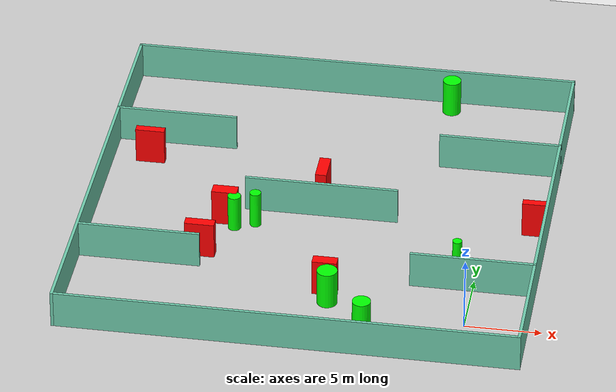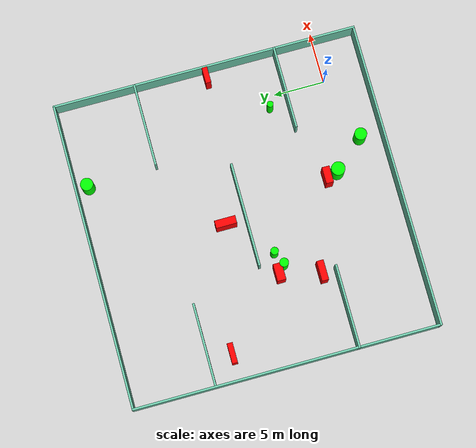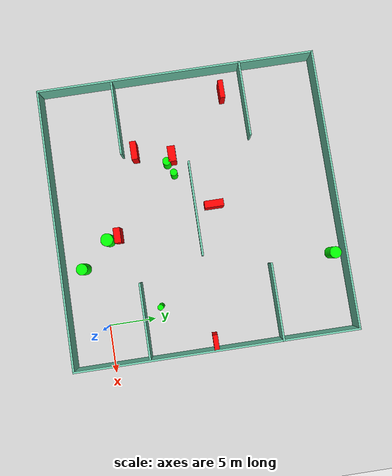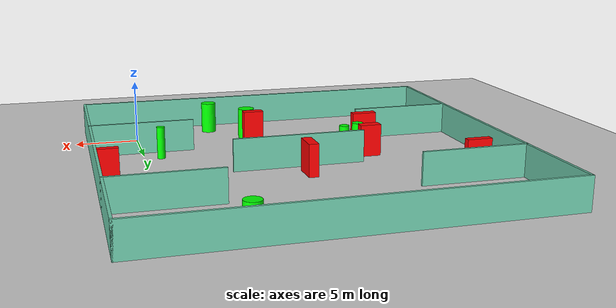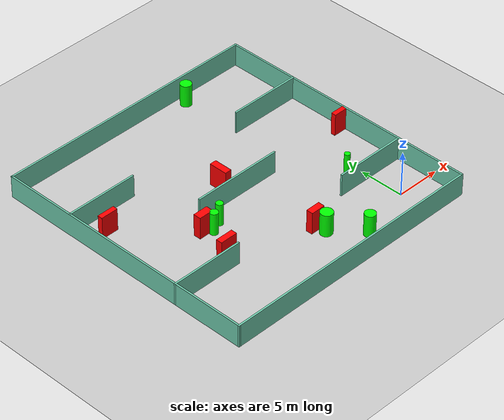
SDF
<sdf version="1.7">
 <world name="default">
  <light name="sun" type="directional">
   <pose>0 0 10 0 -0 0</pose>
   <diffuse>0.8 0.8 0.8 1</diffuse>
   <specular>0.2 0.2 0.2 1</specular>
   <attenuation>
    <range>1000</range>
    <constant>0.9</constant>
    <linear>0.01</linear>
    <quadratic>0.001</quadratic>
   </attenuation>
   <direction>-0.5 0.1 -0.9</direction>
   <spot><inner_angle>0</inner_angle><outer_angle>0</outer_angle><falloff>0</falloff></spot>
  </light>
  <model name="ground_plane">
   <static>1</static>
   <link name="link">
    <collision name="collision">
     <geometry><plane><normal>0 0 1</normal><size>100 100</size></plane></geometry>
     <surface>
      <contact><collide_bitmask>65535</collide_bitmask></contact>
      <friction><ode><mu>100</mu><mu2>50</mu2></ode></friction>
     </surface>
    </collision>
    <visual name="visual">
     <cast_shadows>0</cast_shadows>
     <geometry><plane><normal>0 0 1</normal><size>100 100</size></plane></geometry>
     <material>
      <script><uri>file://media/materials/scripts/gazebo.material</uri><name>Gazebo/Grey</name></script>
     </material>
    </visual>
   </link>
  </model>
  <gravity>0 0 -9.8</gravity>
  <magnetic_field>6e-06 2.3e-05 -4.2e-05</magnetic_field>
  <atmosphere type="adiabatic"/>
  <physics type="ode">
   <max_step_size>0.001</max_step_size>
   <real_time_factor>1</real_time_factor>
   <real_time_update_rate>1000</real_time_update_rate>
  </physics>
  <scene><ambient>0.4 0.4 0.4 1</ambient><background>0.7 0.7 0.7 1</background><shadows>1</shadows></scene>
  <spherical_coordinates>
   <surface_model>EARTH_WGS84</surface_model>
   <latitude_deg>0</latitude_deg>
   <longitude_deg>0</longitude_deg>
   <elevation>0</elevation>
   <heading_deg>0</heading_deg>
  </spherical_coordinates>
  <model name="my_base_walls">
   <link name="Wall_10">
    <collision name="Wall_10_Collision">
     <geometry><box><size>8.2 0.2 2.5</size></box></geometry>
     <pose>0 0 1.25 0 -0 0</pose>
    </collision>
    <visual name="Wall_10_Visual">
     <pose>0 0 1.25 0 -0 0</pose>
     <geometry><box><size>8.2 0.2 2.5</size></box></geometry>
     <material>
      <script><uri>file://media/materials/scripts/gazebo.material</uri><name>Gazebo/Grey</name></script>
      <ambient>0.435294 0.796078 0.67451 1</ambient>
     </material>
     <meta><layer>0</layer></meta>
    </visual>
    <pose>-11 -7 0 0 -0 0</pose>
   </link>
   <link name="Wall_12">
    <collision name="Wall_12_Collision">
     <geometry><box><size>8.2 0.2 2.5</size></box></geometry>
     <pose>0 0 1.25 0 -0 0</pose>
    </collision>
    <visual name="Wall_12_Visual">
     <pose>0 0 1.25 0 -0 0</pose>
     <geometry><box><size>8.2 0.2 2.5</size></box></geometry>
     <material>
      <script><uri>file://media/materials/scripts/gazebo.material</uri><name>Gazebo/Grey</name></script>
      <ambient>0.435294 0.796078 0.67451 1</ambient>
     </material>
     <meta><layer>0</layer></meta>
    </visual>
    <pose>-11 7 0 0 -0 0</pose>
   </link>
   <link name="Wall_14">
    <collision name="Wall_14_Collision">
     <geometry><box><size>8.2 0.2 2.5</size></box></geometry>
     <pose>0 0 1.25 0 -0 0</pose>
    </collision>
    <visual name="Wall_14_Visual">
     <pose>0 0 1.25 0 -0 0</pose>
     <geometry><box><size>8.2 0.2 2.5</size></box></geometry>
     <material>
      <script><uri>file://media/materials/scripts/gazebo.material</uri><name>Gazebo/Grey</name></script>
      <ambient>0.435294 0.796078 0.67451 1</ambient>
     </material>
     <meta><layer>0</layer></meta>
    </visual>
    <pose>11 7 0 0 -0 3.14159</pose>
   </link>
   <link name="Wall_16">
    <collision name="Wall_16_Collision">
     <geometry><box><size>10.2 0.2 2.5</size></box></geometry>
     <pose>0 0 1.25 0 -0 0</pose>
    </collision>
    <visual name="Wall_16_Visual">
     <pose>0 0 1.25 0 -0 0</pose>
     <geometry><box><size>10.2 0.2 2.5</size></box></geometry>
     <material>
      <script><uri>file://media/materials/scripts/gazebo.material</uri><name>Gazebo/Grey</name></script>
      <ambient>0.435294 0.796078 0.67451 1</ambient>
     </material>
     <meta><layer>0</layer></meta>
    </visual>
    <pose>0 0 0 0 -0 3.14159</pose>
   </link>
   <link name="Wall_2">
    <collision name="Wall_2_Collision">
     <geometry><box><size>30.2 0.2 2.5</size></box></geometry>
     <pose>0 0 1.25 0 -0 0</pose>
    </collision>
    <visual name="Wall_2_Visual">
     <pose>0 0 1.25 0 -0 0</pose>
     <geometry><box><size>30.2 0.2 2.5</size></box></geometry>
     <material>
      <script><uri>file://media/materials/scripts/gazebo.material</uri><name>Gazebo/Grey</name></script>
      <ambient>0.435294 0.796078 0.67451 1</ambient>
     </material>
     <meta><layer>0</layer></meta>
    </visual>
    <pose>0 -15 0 0 -0 3.14159</pose>
   </link>
   <link name="Wall_3">
    <collision name="Wall_3_Collision">
     <geometry><box><size>30.2 0.2 2.5</size></box></geometry>
     <pose>0 0 1.25 0 -0 0</pose>
    </collision>
    <visual name="Wall_3_Visual">
     <pose>0 0 1.25 0 -0 0</pose>
     <geometry><box><size>30.2 0.2 2.5</size></box></geometry>
     <material>
      <script><uri>file://media/materials/scripts/gazebo.material</uri><name>Gazebo/Grey</name></script>
      <ambient>0.435294 0.796078 0.67451 1</ambient>
     </material>
     <meta><layer>0</layer></meta>
    </visual>
    <pose>-15 0 0 0 -0 1.5708</pose>
   </link>
   <link name="Wall_4">
    <collision name="Wall_4_Collision">
     <geometry><box><size>30.2 0.2 2.5</size></box></geometry>
     <pose>0 0 1.25 0 -0 0</pose>
    </collision>
    <visual name="Wall_4_Visual">
     <pose>0 0 1.25 0 -0 0</pose>
     <geometry><box><size>30.2 0.2 2.5</size></box></geometry>
     <material>
      <script><uri>file://media/materials/scripts/gazebo.material</uri><name>Gazebo/Grey</name></script>
      <ambient>0.435294 0.796078 0.67451 1</ambient>
     </material>
     <meta><layer>0</layer></meta>
    </visual>
    <pose>0 15 0 0 -0 0</pose>
   </link>
   <link name="Wall_6">
    <collision name="Wall_6_Collision">
     <geometry><box><size>30.2 0.2 2.5</size></box></geometry>
     <pose>0 0 1.25 0 -0 0</pose>
    </collision>
    <visual name="Wall_6_Visual">
     <pose>0 0 1.25 0 -0 0</pose>
     <geometry><box><size>30.2 0.2 2.5</size></box></geometry>
     <material>
      <script><uri>file://media/materials/scripts/gazebo.material</uri><name>Gazebo/Grey</name></script>
      <ambient>0.435294 0.796078 0.67451 1</ambient>
     </material>
     <meta><layer>0</layer></meta>
    </visual>
    <pose>15 0 0 0 -0 1.5708</pose>
   </link>
   <link name="Wall_8">
    <collision name="Wall_8_Collision">
     <geometry><box><size>8.2 0.2 2.5</size></box></geometry>
     <pose>0 0 1.25 0 -0 0</pose>
    </collision>
    <visual name="Wall_8_Visual">
     <pose>0 0 1.25 0 -0 0</pose>
     <geometry><box><size>8.2 0.2 2.5</size></box></geometry>
     <material>
      <script><uri>file://media/materials/scripts/gazebo.material</uri><name>Gazebo/Grey</name></script>
      <ambient>0.435294 0.796078 0.67451 1</ambient>
     </material>
     <meta><layer>0</layer></meta>
    </visual>
    <pose>11 -7 0 0 -0 3.14159</pose>
   </link>
   <static>1</static>
   <pose>-11 11 0 0 -0 0</pose>
  </model>
  <model name="cylinder1">
   <static>1</static>
   <link name="link">
    <inertial>
     <mass>1</mass>
     <inertia><ixx>0.5</ixx><ixy>0</ixy><ixz>0</ixz><iyy>0.5</iyy><iyz>0</iyz><izz>1</izz></inertia>
    </inertial>
    <collision name="collision">
     <geometry><cylinder><radius>0.38145933421794703</radius><length>2.5</length></cylinder></geometry>
    </collision>
    <visual name="visual">
     <geometry><cylinder><radius>0.38145933421794703</radius><length>2.5</length></cylinder></geometry>
     <material>
      <ambient>0 1 0 1</ambient>
      <diffuse>0 1 0 1</diffuse>
      <specular>0.1 0.1 0.1 1</specular>
      <emissive>0 0 0 0</emissive>
     </material>
    </visual>
   </link>
   <pose>-15.122676262033591 9.259781263989922 1.25 0 0 0</pose>
  </model>
  <model name="cylinder2">
   <static>1</static>
   <link name="link">
    <inertial>
     <mass>1</mass>
     <inertia><ixx>0.5</ixx><ixy>0</ixy><ixz>0</ixz><iyy>0.5</iyy><iyz>0</iyz><izz>1</izz></inertia>
    </inertial>
    <collision name="collision">
     <geometry><cylinder><radius>0.617310928817248</radius><length>2.5</length></cylinder></geometry>
    </collision>
    <visual name="visual">
     <geometry><cylinder><radius>0.617310928817248</radius><length>2.5</length></cylinder></geometry>
     <material>
      <ambient>0 1 0 1</ambient>
      <diffuse>0 1 0 1</diffuse>
      <specular>0.1 0.1 0.1 1</specular>
      <emissive>0 0 0 0</emissive>
     </material>
    </visual>
   </link>
   <pose>-4.179656492049817 24.83584998879276 1.25 0 0 0</pose>
  </model>
  <model name="cylinder3">
   <static>1</static>
   <link name="link">
    <inertial>
     <mass>1</mass>
     <inertia><ixx>0.5</ixx><ixy>0</ixy><ixz>0</ixz><iyy>0.5</iyy><iyz>0</iyz><izz>1</izz></inertia>
    </inertial>
    <collision name="collision">
     <geometry><cylinder><radius>0.3106157473002027</radius><length>2.5</length></cylinder></geometry>
    </collision>
    <visual name="visual">
     <geometry><cylinder><radius>0.3106157473002027</radius><length>2.5</length></cylinder></geometry>
     <material>
      <ambient>0 1 0 1</ambient>
      <diffuse>0 1 0 1</diffuse>
      <specular>0.1 0.1 0.1 1</specular>
      <emissive>0 0 0 0</emissive>
     </material>
    </visual>
   </link>
   <pose>-1.2633422169368842 5.83814649951646 1.25 0 0 0</pose>
  </model>
  <model name="cylinder4">
   <static>1</static>
   <link name="link">
    <inertial>
     <mass>1</mass>
     <inertia><ixx>0.5</ixx><ixy>0</ixy><ixz>0</ixz><iyy>0.5</iyy><iyz>0</iyz><izz>1</izz></inertia>
    </inertial>
    <collision name="collision">
     <geometry><cylinder><radius>0.6013329630506089</radius><length>2.5</length></cylinder></geometry>
    </collision>
    <visual name="visual">
     <geometry><cylinder><radius>0.6013329630506089</radius><length>2.5</length></cylinder></geometry>
     <material>
      <ambient>0 1 0 1</ambient>
      <diffuse>0 1 0 1</diffuse>
      <specular>0.1 0.1 0.1 1</specular>
      <emissive>0 0 0 0</emissive>
     </material>
    </visual>
   </link>
   <pose>-6.382274110585929 -1.763971742295074 1.25 0 0 0</pose>
  </model>
  <model name="cylinder5">
   <static>1</static>
   <link name="link">
    <inertial>
     <mass>1</mass>
     <inertia><ixx>0.5</ixx><ixy>0</ixy><ixz>0</ixz><iyy>0.5</iyy><iyz>0</iyz><izz>1</izz></inertia>
    </inertial>
    <collision name="collision">
     <geometry><cylinder><radius>0.6710989082918754</radius><length>2.5</length></cylinder></geometry>
    </collision>
    <visual name="visual">
     <geometry><cylinder><radius>0.6710989082918754</radius><length>2.5</length></cylinder></geometry>
     <material>
      <ambient>0 1 0 1</ambient>
      <diffuse>0 1 0 1</diffuse>
      <specular>0.1 0.1 0.1 1</specular>
      <emissive>0 0 0 0</emissive>
     </material>
    </visual>
   </link>
   <pose>-9.068719012966513 1.2478092746818152 1.25 0 0 0</pose>
  </model>
  <model name="cylinder6">
   <static>1</static>
   <link name="link">
    <inertial>
     <mass>1</mass>
     <inertia><ixx>0.5</ixx><ixy>0</ixy><ixz>0</ixz><iyy>0.5</iyy><iyz>0</iyz><izz>1</izz></inertia>
    </inertial>
    <collision name="collision">
     <geometry><cylinder><radius>0.43755554220518433</radius><length>2.5</length></cylinder></geometry>
    </collision>
    <visual name="visual">
     <geometry><cylinder><radius>0.43755554220518433</radius><length>2.5</length></cylinder></geometry>
     <material>
      <ambient>0 1 0 1</ambient>
      <diffuse>0 1 0 1</diffuse>
      <specular>0.1 0.1 0.1 1</specular>
      <emissive>0 0 0 0</emissive>
     </material>
    </visual>
   </link>
   <pose>-16.42327445303787 8.679182297881843 1.25 0 0 0</pose>
  </model>
  <model name="box1">
   <static>1</static>
   <link name="link">
    <inertial>
     <mass>1</mass>
     <inertia><ixx>0.083</ixx><ixy>0</ixy><ixz>0</ixz><iyy>0.083</iyy><iyz>0</iyz><izz>0.083</izz></inertia>
    </inertial>
    <collision name="collision">
     <geometry><box><size>0.755932878600223 2.049142555325998 2.5</size></box></geometry>
    </collision>
    <visual name="visual">
     <geometry><box><size>0.755932878600223 2.049142555325998 2.5</size></box></geometry>
     <material>
      <ambient>1 0 0 1</ambient>
      <diffuse>1 0 0 1</diffuse>
      <specular>0.1 0.1 0.1 1</specular>
      <emissive>0 0 0 0</emissive>
     </material>
    </visual>
    <sensor name="my_contact" type="contact">
     <contact><collision>box_collision</collision><topic>__default_topic__</topic></contact>
    </sensor>
   </link>
   <pose>-11.205503133633474 13.001380075597275 1.25 0 0 0</pose>
  </model>
  <model name="box2">
   <static>1</static>
   <link name="link">
    <inertial>
     <mass>1</mass>
     <inertia><ixx>0.083</ixx><ixy>0</ixy><ixz>0</ixz><iyy>0.083</iyy><iyz>0</iyz><izz>0.083</izz></inertia>
    </inertial>
    <collision name="collision">
     <geometry><box><size>1.9660269079665613 0.6726865216182825 2.5</size></box></geometry>
    </collision>
    <visual name="visual">
     <geometry><box><size>1.9660269079665613 0.6726865216182825 2.5</size></box></geometry>
     <material>
      <ambient>1 0 0 1</ambient>
      <diffuse>1 0 0 1</diffuse>
      <specular>0.1 0.1 0.1 1</specular>
      <emissive>0 0 0 0</emissive>
     </material>
    </visual>
    <sensor name="my_contact" type="contact">
     <contact><collision>box_collision</collision><topic>__default_topic__</topic></contact>
    </sensor>
   </link>
   <pose>-18.11952246387966 5.367214890497419 1.25 0 0 0</pose>
  </model>
  <model name="box3">
   <static>1</static>
   <link name="link">
    <inertial>
     <mass>1</mass>
     <inertia><ixx>0.083</ixx><ixy>0</ixy><ixz>0</ixz><iyy>0.083</iyy><iyz>0</iyz><izz>0.083</izz></inertia>
    </inertial>
    <collision name="collision">
     <geometry><box><size>1.5660390875049213 0.5256691366336208 2.5</size></box></geometry>
    </collision>
    <visual name="visual">
     <geometry><box><size>1.5660390875049213 0.5256691366336208 2.5</size></box></geometry>
     <material>
      <ambient>1 0 0 1</ambient>
      <diffuse>1 0 0 1</diffuse>
      <specular>0.1 0.1 0.1 1</specular>
      <emissive>0 0 0 0</emissive>
     </material>
    </visual>
    <sensor name="my_contact" type="contact">
     <contact><collision>box_collision</collision><topic>__default_topic__</topic></contact>
    </sensor>
   </link>
   <pose>3.151230731167569 11.0049044365896 1.25 0 0 0</pose>
  </model>
  <model name="box4">
   <static>1</static>
   <link name="link">
    <inertial>
     <mass>1</mass>
     <inertia><ixx>0.083</ixx><ixy>0</ixy><ixz>0</ixz><iyy>0.083</iyy><iyz>0</iyz><izz>0.083</izz></inertia>
    </inertial>
    <collision name="collision">
     <geometry><box><size>1.6758787893435576 0.839683576770913 2.5</size></box></geometry>
    </collision>
    <visual name="visual">
     <geometry><box><size>1.6758787893435576 0.839683576770913 2.5</size></box></geometry>
     <material>
      <ambient>1 0 0 1</ambient>
      <diffuse>1 0 0 1</diffuse>
      <specular>0.1 0.1 0.1 1</specular>
      <emissive>0 0 0 0</emissive>
     </material>
    </visual>
    <sensor name="my_contact" type="contact">
     <contact><collision>box_collision</collision><topic>__default_topic__</topic></contact>
    </sensor>
   </link>
   <pose>-17.163371211949244 9.339102767980535 1.25 0 0 0</pose>
  </model>
  <model name="box5">
   <static>1</static>
   <link name="link">
    <inertial>
     <mass>1</mass>
     <inertia><ixx>0.083</ixx><ixy>0</ixy><ixz>0</ixz><iyy>0.083</iyy><iyz>0</iyz><izz>0.083</izz></inertia>
    </inertial>
    <collision name="collision">
     <geometry><box><size>1.6233468438469092 0.7297299843910257 2.5</size></box></geometry>
    </collision>
    <visual name="visual">
     <geometry><box><size>1.6233468438469092 0.7297299843910257 2.5</size></box></geometry>
     <material>
      <ambient>1 0 0 1</ambient>
      <diffuse>1 0 0 1</diffuse>
      <specular>0.1 0.1 0.1 1</specular>
      <emissive>0 0 0 0</emissive>
     </material>
    </visual>
    <sensor name="my_contact" type="contact">
     <contact><collision>box_collision</collision><topic>__default_topic__</topic></contact>
    </sensor>
   </link>
   <pose>-9.386600457244514 2.3786463603106416 1.25 0 0 0</pose>
  </model>
  <model name="box6">
   <static>1</static>
   <link name="link">
    <inertial>
     <mass>1</mass>
     <inertia><ixx>0.083</ixx><ixy>0</ixy><ixz>0</ixz><iyy>0.083</iyy><iyz>0</iyz><izz>0.083</izz></inertia>
    </inertial>
    <collision name="collision">
     <geometry><box><size>1.9510423756487034 0.5453778165341258 2.5</size></box></geometry>
    </collision>
    <visual name="visual">
     <geometry><box><size>1.9510423756487034 0.5453778165341258 2.5</size></box></geometry>
     <material>
      <ambient>1 0 0 1</ambient>
      <diffuse>1 0 0 1</diffuse>
      <specular>0.1 0.1 0.1 1</specular>
      <emissive>0 0 0 0</emissive>
     </material>
    </visual>
    <sensor name="my_contact" type="contact">
     <contact><collision>box_collision</collision><topic>__default_topic__</topic></contact>
    </sensor>
   </link>
   <pose>-23.379293688612066 15.675054235961618 1.25 0 0 0</pose>
  </model>
 </world>
</sdf>
